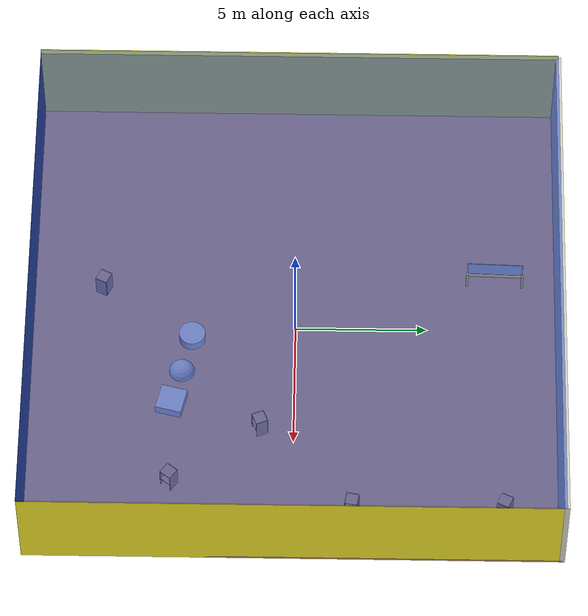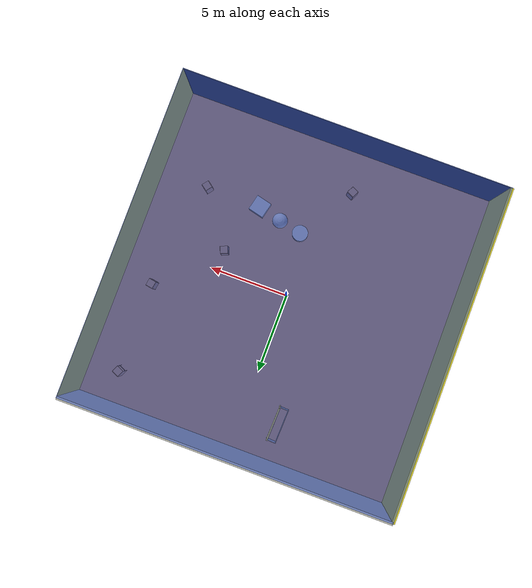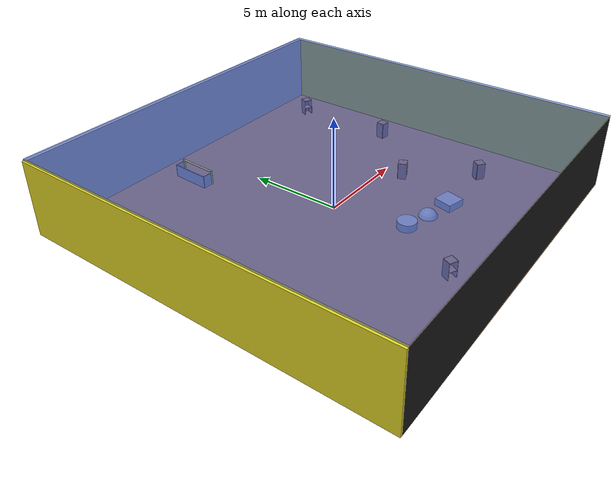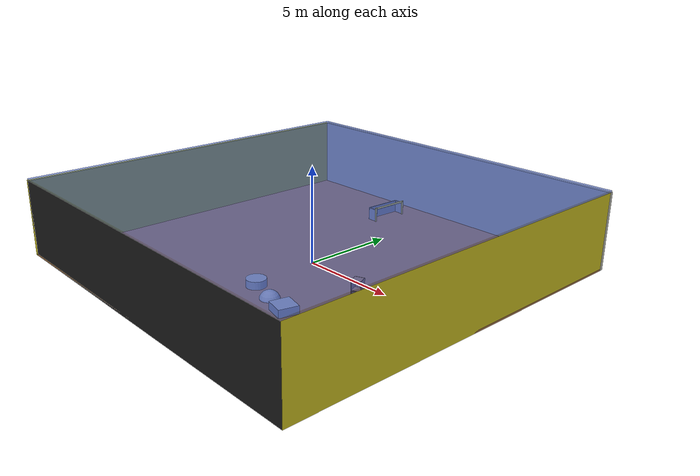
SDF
<sdf version="1.4">
 <world name="default">
  <physics type="ode">
   <max_step_size>0.001</max_step_size>
   <real_time_factor>1</real_time_factor>
   <real_time_update_rate>1000</real_time_update_rate>
   <gravity>0 0 -9.8</gravity>
  </physics>
  <scene><ambient>0.4 0.4 0.4 1</ambient><background>0.7 0.7 0.7 1</background><shadows>1</shadows></scene>
  <model name="Surrounding">
   <static>1</static>
   <link name="Ceiling">
    <collision name="Ceiling_Collision"><geometry><box><size>20 20 0.1</size></box></geometry></collision>
    <visual name="Ceiling_Visual">
     <geometry><box><size>20 20 0.1</size></box></geometry>
     <material>
      <script><uri>file://media/materials/scripts/gazebo.material</uri><name>Gazebo/BlueTransparent</name></script>
     </material>
    </visual>
    <pose>0 0 4.05 0 0 0</pose>
   </link>
   <link name="Wall_South">
    <collision name="Wall_South_Collision">
     <geometry><box><size>20 0 4</size></box></geometry>
     <pose>0 0 2 0 -0 0</pose>
    </collision>
    <visual name="Wall_South_Visual">
     <pose>0 0 2 0 -0 0</pose>
     <geometry><box><size>20 0 4</size></box></geometry>
     <material>
      <script><uri>file://media/materials/scripts/gazebo.material</uri><name>Gazebo/FlatBlack</name></script>
     </material>
    </visual>
    <velocity_decay><linear>0</linear><angular>0</angular></velocity_decay>
    <pose>0 -10 0 0 -0 0</pose>
   </link>
   <link name="Wall_East">
    <collision name="Wall_21_Collision">
     <geometry><box><size>20 0 4</size></box></geometry>
     <pose>0 0 2 0 -0 0</pose>
    </collision>
    <visual name="Wall_21_Visual">
     <pose>0 0 2 0 -0 0</pose>
     <geometry><box><size>20 0 4</size></box></geometry>
     <material>
      <script><uri>file://media/materials/scripts/gazebo.material</uri><name>Gazebo/YellowGlow</name></script>
     </material>
    </visual>
    <velocity_decay><linear>0</linear><angular>0</angular></velocity_decay>
    <pose>10 0 0 0 -0 1.5708</pose>
   </link>
   <link name="Wall_North">
    <collision name="Wall_22_Collision">
     <geometry><box><size>20 0.2 4</size></box></geometry>
     <pose>0 0 2 0 -0 0</pose>
    </collision>
    <visual name="Wall_22_Visual">
     <pose>0 0 2 0 -0 0</pose>
     <geometry><box><size>20 0.2 4</size></box></geometry>
     <material>
      <script><uri>file://media/materials/scripts/gazebo.material</uri><name>Gazebo/PaintedWall</name></script>
     </material>
    </visual>
    <velocity_decay><linear>0</linear><angular>0</angular></velocity_decay>
    <pose>0 10 0 0 -0 0</pose>
   </link>
   <link name="Wall_West">
    <collision name="Wall_23_Collision">
     <geometry><box><size>20 0.2 4</size></box></geometry>
     <pose>0 0 2 0 -0 0</pose>
    </collision>
    <visual name="Wall_23_Visual">
     <pose>0 0 2 0 -0 0</pose>
     <geometry><box><size>20 0.2 4</size></box></geometry>
     <material>
      <script><uri>file://media/materials/scripts/gazebo.material</uri><name>Gazebo/Yellow</name></script>
     </material>
    </visual>
    <velocity_decay><linear>0</linear><angular>0</angular></velocity_decay>
    <pose>-10 0 0 0 0 -1.5708</pose>
   </link>
   <link name="Ground_link">
    <collision name="collision">
     <pose>0 0 .05 0 -0 0</pose>
     <geometry><box><size>20 20 0.1</size></box></geometry>
    </collision>
    <visual name="visual">
     <pose>0 0 .05 0 -0 0</pose>
     <geometry><box><size>20 20 0.1</size></box></geometry>
     <material>
      <script><uri>file://media/materials/scripts/gazebo.material</uri><name>Gazebo/WoodPallet</name></script>
     </material>
    </visual>
   </link>
   <static>1</static>
  </model>
  <spherical_coordinates>
   <surface_model>EARTH_WGS84</surface_model>
   <latitude_deg>0</latitude_deg>
   <longitude_deg>0</longitude_deg>
   <elevation>0</elevation>
   <heading_deg>0</heading_deg>
  </spherical_coordinates>
  <light name="lightball_0" type="diffuse">
   <diffuse>0.8 0.8 0.8 1</diffuse>
   <specular>0.2 0.2 0.2 1</specular>
   <attenuation>
    <range>100</range>
    <constant>0.7</constant>
    <linear>0.01</linear>
    <quadratic>0.001</quadratic>
   </attenuation>
   <direction>-0.5 0.1 -0.9</direction>
   <pose>-6.00795114169 -2.5739344854 1.50729004219 0 0 0</pose>
  </light>
  <light name="lightball_1" type="diffuse">
   <diffuse>0.8 0.8 0.8 1</diffuse>
   <specular>0.2 0.2 0.2 1</specular>
   <attenuation>
    <range>100</range>
    <constant>0.7</constant>
    <linear>0.01</linear>
    <quadratic>0.001</quadratic>
   </attenuation>
   <direction>-0.5 0.1 -0.9</direction>
   <pose>7.3273639093 -3.97817427303 3.49563346706 0 0 0</pose>
  </light>
  <light name="lightball_2" type="diffuse">
   <diffuse>0.8 0.8 0.8 1</diffuse>
   <specular>0.2 0.2 0.2 1</specular>
   <attenuation>
    <range>100</range>
    <constant>0.7</constant>
    <linear>0.01</linear>
    <quadratic>0.001</quadratic>
   </attenuation>
   <direction>-0.5 0.1 -0.9</direction>
   <pose>6.37733559773 -7.17890805096 0.614710147649 0 0 0</pose>
  </light>
  <light name="lightball_3" type="diffuse">
   <diffuse>0.8 0.8 0.8 1</diffuse>
   <specular>0.2 0.2 0.2 1</specular>
   <attenuation>
    <range>100</range>
    <constant>0.7</constant>
    <linear>0.01</linear>
    <quadratic>0.001</quadratic>
   </attenuation>
   <direction>-0.5 0.1 -0.9</direction>
   <pose>-1.42666057456 -1.70431949686 2.31992813246 0 0 0</pose>
  </light>
  <light name="lightball_4" type="diffuse">
   <diffuse>0.8 0.8 0.8 1</diffuse>
   <specular>0.2 0.2 0.2 1</specular>
   <attenuation>
    <range>100</range>
    <constant>0.7</constant>
    <linear>0.01</linear>
    <quadratic>0.001</quadratic>
   </attenuation>
   <direction>-0.5 0.1 -0.9</direction>
   <pose>-9.58363787918 7.54025004087 2.22966996998 0 0 0</pose>
  </light>
  <light name="lightball_5" type="diffuse">
   <diffuse>0.8 0.8 0.8 1</diffuse>
   <specular>0.2 0.2 0.2 1</specular>
   <attenuation>
    <range>100</range>
    <constant>0.7</constant>
    <linear>0.01</linear>
    <quadratic>0.001</quadratic>
   </attenuation>
   <direction>-0.5 0.1 -0.9</direction>
   <pose>7.32614305962 -2.68054671824 3.56417278695 0 0 0</pose>
  </light>
  <light name="lightball_6" type="diffuse">
   <diffuse>0.8 0.8 0.8 1</diffuse>
   <specular>0.2 0.2 0.2 1</specular>
   <attenuation>
    <range>100</range>
    <constant>0.7</constant>
    <linear>0.01</linear>
    <quadratic>0.001</quadratic>
   </attenuation>
   <direction>-0.5 0.1 -0.9</direction>
   <pose>-2.6580903281 -4.49105986801 1.17598804353 0 0 0</pose>
  </light>
  <light name="lightball_7" type="diffuse">
   <diffuse>0.8 0.8 0.8 1</diffuse>
   <specular>0.2 0.2 0.2 1</specular>
   <attenuation>
    <range>100</range>
    <constant>0.7</constant>
    <linear>0.01</linear>
    <quadratic>0.001</quadratic>
   </attenuation>
   <direction>-0.5 0.1 -0.9</direction>
   <pose>-0.186704087658 7.53433445269 1.71210728677 0 0 0</pose>
  </light>
  <include><uri>model://cabinet</uri><pose>-1.63863186232 -7.36168501954 0 0 0 1.12653122626</pose></include>
  <include>
   <uri>model://robocup_3Dsim_goal</uri>
   <pose>-1.96932615968 7.59885656646 0 0 0 3.10760879351</pose>
  </include>
  <include>
   <uri>model://textured_shapes</uri>
   <pose>2.00817272324 -4.27949970371 0 0 0 1.33165103999</pose>
  </include>
  <include><uri>model://cabinet</uri><pose>4.55025210529 -1.27694962985 0 0 0 1.96519316234</pose></include>
  <include><uri>model://cabinet</uri><pose>6.91623300663 -4.6170281703 0 0 0 2.48950891742</pose></include>
  <include><uri>model://cabinet</uri><pose>8.00865371189 2.20943584982 0 0 0 2.97554308992</pose></include>
  <include><uri>model://cabinet</uri><pose>7.97551323324 7.89000859712 0 0 0 1.14596328997</pose></include>
 </world>
</sdf>

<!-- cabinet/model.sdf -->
<sdf version="1.5">
  <model name="cabinet">
    <static>true</static>
    <link name="cabinet_bottom_plate">
      <inertial>
        <pose>0 0 -1 0 0 0</pose>
        <inertia>
          <ixx>2.050000</ixx>
          <ixy>0</ixy>
          <ixz>0</ixz>
          <iyy>2.050000</iyy>
          <iyz>0</iyz>
          <izz>2.050000</izz>
        </inertia>
        <mass>25.000000</mass>
      </inertial>
      <collision name="cabinet_bottom_plate_geom">
        <pose>0 0 0.010000 0 0 0</pose>
        <geometry>
          <box>
            <size>0.450000 0.450000 0.020000</size>
          </box>
        </geometry>
      </collision>
      <visual name="cabinet_bottom_plate_geom_visual">
        <pose>0 0 0.010000 0 0 0</pose>
        <geometry>
          <box>
            <size>0.450000 0.450000 0.020000</size>
          </box>
        </geometry>
        <material>
          <script>
            <uri>model://media/materials/scripts/gazebo.material</uri>
            <name>Gazebo/Wood</name>
          </script>
        </material>
      </visual>
      <collision name="cabinet_bottom_plate_geom_cabinet_back_plate">
        <pose>0.235000 0 0.510000 0 0 0</pose>
        <geometry>
          <box>
            <size>0.020000 0.450000 1.020000</size>
          </box>
        </geometry>
      </collision>
      <visual name="cabinet_bottom_plate_geom_cabinet_back_plate_visual">
        <pose>0.235000 0 0.510000 0 0 0</pose>
        <geometry>
          <box>
            <size>0.020000 0.450000 1.020000</size>
          </box>
        </geometry>
        <material>
          <script>
            <uri>model://media/materials/scripts/gazebo.material</uri>
            <name>Gazebo/Wood</name>
          </script>
        </material>
      </visual>
      <collision name="cabinet_bottom_plate_geom_cabinet_left_plate">
        <pose>0 0.235000 0.510000 0 0 0</pose>
        <geometry>
          <box>
            <size>0.450000 0.020000 1.020000</size>
          </box>
        </geometry>
      </collision>
      <visual name="cabinet_bottom_plate_geom_cabinet_left_plate_visual">
        <pose>0 0.235000 0.510000 0 0 0</pose>
        <geometry>
          <box>
            <size>0.450000 0.020000 1.020000</size>
          </box>
        </geometry>
        <material>
          <script>
            <uri>model://media/materials/scripts/gazebo.material</uri>
            <name>Gazebo/Wood</name>
          </script>
        </material>
      </visual>
      <collision name="cabinet_bottom_plate_geom_cabinet_middle_plate">
        <pose>0 0 0.510000 0 0 0</pose>
        <geometry>
          <box>
            <size>0.450000 0.450000 0.020000</size>
          </box>
        </geometry>
      </collision>
      <visual name="cabinet_bottom_plate_geom_cabinet_middle_plate_visual">
        <pose>0 0 0.510000 0 0 0</pose>
        <geometry>
          <box>
            <size>0.450000 0.450000 0.020000</size>
          </box>
        </geometry>
        <material>
          <script>
            <uri>model://media/materials/scripts/gazebo.material</uri>
            <name>Gazebo/Wood</name>
          </script>
        </material>
      </visual>
      <collision name="cabinet_bottom_plate_geom_cabinet_right_plate">
        <pose>0 -0.235000 0.510000 0 0 0</pose>
        <geometry>
          <box>
            <size>0.450000 0.020000 1.020000</size>
          </box>
        </geometry>
      </collision>
      <visual name="cabinet_bottom_plate_geom_cabinet_right_plate_visual">
        <pose>0 -0.235000 0.510000 0 0 0</pose>
        <geometry>
          <box>
            <size>0.450000 0.020000 1.020000</size>
          </box>
        </geometry>
        <material>
          <script>
            <uri>model://media/materials/scripts/gazebo.material</uri>
            <name>Gazebo/Wood</name>
          </script>
        </material>
      </visual>
      <collision name="cabinet_bottom_plate_geom_cabinet_top_plate">
        <pose>0 0 1.010000 0 0 0</pose>
        <geometry>
          <box>
            <size>0.450000 0.450000 0.020000</size>
          </box>
        </geometry>
      </collision>
      <visual name="cabinet_bottom_plate_geom_cabinet_top_plate_visual">
        <pose>0 0 1.010000 0 0 0</pose>
        <geometry>
          <box>
            <size>0.450000 0.450000 0.020000</size>
          </box>
        </geometry>
        <material>
          <script>
            <uri>model://media/materials/scripts/gazebo.material</uri>
            <name>Gazebo/Wood</name>
          </script>
        </material>
      </visual>
    </link>
  </model>
</sdf>

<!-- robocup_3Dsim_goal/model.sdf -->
<sdf version="1.5">
  <model name="robocup_3d_goal">
    <static>true</static>
    <link name="left_post">
      <pose>0 1.05 0.45 0 0 0</pose>
      <collision name="collision">
        <geometry>
          <cylinder>
            <radius>0.05</radius>
            <length>0.9</length>
          </cylinder>
        </geometry>
      </collision>
      <visual name="visual">
        <geometry>
          <cylinder>
            <radius>0.05</radius>
            <length>0.9</length>
          </cylinder>
        </geometry>
        <material>
          <script>
            <uri>file://media/materials/scripts/gazebo.material</uri>
            <name>Gazebo/ZincYellow</name>
          </script>
        </material>
      </visual>
    </link>
    <link name="left_support_horiz_lower">
      <pose>0.30 1.05 0.01 0 0 0</pose>
      <collision name="collision">
        <geometry>
          <box>
            <size>0.50 0.02 0.02</size>
          </box>
        </geometry>
      </collision>
      <visual name="visual">
        <geometry>
          <box>
            <size>0.50 0.02 0.02</size>
          </box>
        </geometry>
        <material>
          <script>
            <uri>file://media/materials/scripts/gazebo.material</uri>
            <name>Gazebo/White</name>
          </script>
        </material>
      </visual>
    </link>
    <link name="left_support_horiz_upper">
      <pose>0.30 1.05 0.79 0 0 0</pose>
      <collision name="collision">
        <geometry>
          <box>
            <size>0.50 0.02 0.02</size>
          </box>
        </geometry>
      </collision>
      <visual name="visual">
        <geometry>
          <box>
            <size>0.50 0.02 0.02</size>
          </box>
        </geometry>
        <material>
          <script>
            <uri>file://media/materials/scripts/gazebo.material</uri>
            <name>Gazebo/White</name>
          </script>
        </material>
      </visual>
    </link>
    <link name="left_support_vertical">
      <pose>0.56 1.05 0.4 0 1.5708 0</pose>
      <collision name="collision">
        <geometry>
          <box>
            <size>0.80 0.02 0.02</size>
          </box>
        </geometry>
      </collision>
      <visual name="visual">
        <geometry>
          <box>
            <size>0.80 0.02 0.02</size>
          </box>
        </geometry>
        <material>
          <script>
            <uri>file://media/materials/scripts/gazebo.material</uri>
            <name>Gazebo/White</name>
          </script>
        </material>
      </visual>
    </link>
    <link name="right_support_horiz_lower">
      <pose>0.30 -1.05 0.01 0 0 0</pose>
      <collision name="collision">
        <geometry>
          <box>
            <size>0.50 0.02 0.02</size>
          </box>
        </geometry>
      </collision>
      <visual name="visual">
        <geometry>
          <box>
            <size>0.50 0.02 0.02</size>
          </box>
        </geometry>
        <material>
          <script>
            <uri>file://media/materials/scripts/gazebo.material</uri>
            <name>Gazebo/White</name>
          </script>
        </material>
      </visual>
    </link>
    <link name="right_support_horiz_upper">
      <pose>0.30 -1.05 0.79 0 0 0</pose>
      <collision name="collision">
        <geometry>
          <box>
            <size>0.50 0.02 0.02</size>
          </box>
        </geometry>
      </collision>
      <visual name="visual">
        <geometry>
          <box>
            <size>0.50 0.02 0.02</size>
          </box>
        </geometry>
        <material>
          <script>
            <uri>file://media/materials/scripts/gazebo.material</uri>
            <name>Gazebo/White</name>
          </script>
        </material>
      </visual>
    </link>
    <link name="right_support_vertical">
      <pose>0.56 -1.05 0.4 0 1.5708 0</pose>
      <collision name="collision">
        <geometry>
          <box>
            <size>0.80 0.02 0.02</size>
          </box>
        </geometry>
      </collision>
      <visual name="visual">
        <geometry>
          <box>
            <size>0.80 0.02 0.02</size>
          </box>
        </geometry>
        <material>
          <script>
            <uri>file://media/materials/scripts/gazebo.material</uri>
            <name>Gazebo/White</name>
          </script>
        </material>
      </visual>
    </link>
    <link name="center_support_horiz_lower">
      <pose>0.56 0 0.01 0 1.5708 0</pose>
      <collision name="collision">
        <geometry>
          <box>
            <size>0.02 2.08 0.02</size>
          </box>
        </geometry>
      </collision>
      <visual name="visual">
        <geometry>
          <box>
            <size>0.02 2.08 0.02</size>
          </box>
        </geometry>
        <material>
          <script>
            <uri>file://media/materials/scripts/gazebo.material</uri>
            <name>Gazebo/White</name>
          </script>
        </material>
      </visual>
    </link>
    <link name="center_support_horiz_upper">
      <pose>0.56 0 0.79 0 1.5708 0</pose>
      <collision name="collision">
        <geometry>
          <box>
            <size>0.02 2.08 0.02</size>
          </box>
        </geometry>
      </collision>
      <visual name="visual">
        <geometry>
          <box>
            <size>0.02 2.08 0.02</size>
          </box>
        </geometry>
        <material>
          <script>
            <uri>file://media/materials/scripts/gazebo.material</uri>
            <name>Gazebo/White</name>
          </script>
        </material>
      </visual>
    </link>
    <link name="right_post">
      <pose>0 -1.05 0.45 0 0 0</pose>
      <collision name="collision">
        <geometry>
          <cylinder>
            <radius>0.05</radius>
            <length>0.9</length>
          </cylinder>
        </geometry>
      </collision>
      <visual name="visual">
        <geometry>
          <cylinder>
            <radius>0.05</radius>
            <length>0.9</length>
          </cylinder>
        </geometry>
        <material>
          <script>
            <uri>file://media/materials/scripts/gazebo.material</uri>
            <name>Gazebo/ZincYellow</name>
          </script>
        </material>
      </visual>
    </link>
    <link name="crossbar">
      <pose>0 0 0.85 1.57 1.57 0</pose>
      <collision name="collision">
        <geometry>
          <cylinder>
            <radius>0.05</radius>
            <length>2.0</length>
          </cylinder>
        </geometry>
      </collision>
      <visual name="visual">
        <geometry>
          <cylinder>
            <radius>0.05</radius>
            <length>2.0</length>
          </cylinder>
        </geometry>
        <material>
          <script>
            <uri>file://media/materials/scripts/gazebo.material</uri>
            <name>Gazebo/ZincYellow</name>
          </script>
        </material>
      </visual>
    </link>
    <link name="center_net">
      <pose>0.56 0 0.40 0 0 0</pose>
      <collision name="collision">
        <geometry>
          <box>
            <size>0.01 2.1 0.80</size>
          </box>
        </geometry>
      </collision>
      <visual name="visual">
        <geometry>
          <box>
            <size>0.01 2.1 0.80</size>
          </box>
        </geometry>
        <material>
          <script>
            <uri>model://../model_source/models/robocup09_spl_field/materials/scripts/</uri>
            <uri>model://../model_source/models/robocup09_spl_field/materials/textures/</uri>
            <name>RoboCup/Net</name>
          </script>
        </material>
      </visual>
    </link>
    <link name="left_net">
      <pose>0.30 1.05 0.40 0 0 0</pose>
      <collision name="collision">
        <geometry>
          <box>
            <size>0.50 0.01 0.76</size>
          </box>
        </geometry>
      </collision>
      <visual name="visual">
        <geometry>
          <box>
            <size>0.50 0.01 0.76</size>
          </box>
        </geometry>
        <material>
          <script>
            <uri>model://../model_source/models/robocup09_spl_field/materials/scripts/</uri>
            <uri>model://../model_source/models/robocup09_spl_field/materials/textures/</uri>
            <name>RoboCup/Net</name>
          </script>
        </material>
      </visual>
    </link>
    <link name="right_net">
      <pose>0.30 -1.05 0.40 0 0 0</pose>
      <collision name="collision">
        <geometry>
          <box>
            <size>0.50 0.01 0.76</size>
          </box>
        </geometry>
      </collision>
      <visual name="visual">
        <geometry>
          <box>
            <size>0.50 0.01 0.76</size>
          </box>
        </geometry>
        <material>
          <script>
            <uri>model://../model_source/models/robocup09_spl_field/materials/scripts/</uri>
            <uri>model://../model_source/models/robocup09_spl_field/materials/textures/</uri>
            <name>RoboCup/Net</name>
          </script>
        </material>
      </visual>
    </link>
  </model>
</sdf>

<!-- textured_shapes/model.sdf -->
<sdf version="1.6">
  <model name="textured_shapes">
    <pose>0 0 0.5 0 0 0</pose>
    <link name="box">
      <pose>0 -1.5 0 0 0 0</pose>
      <collision name="collision">
        <geometry>
          <box>
            <size>1 1 1</size>
          </box>
        </geometry>
      </collision>
      <visual name="visual">
        <geometry>
          <box>
            <size>1 1 1</size>
          </box>
        </geometry>
        <material>
          <script>
            <uri>model://../model_source/models/textured_shapes/materials/scripts</uri>
            <uri>model://../model_source/models/textured_shapes/materials/textures</uri>
            <name>TexturedShape/Squares</name>
          </script>
        </material>
      </visual>
    </link>
    <link name="sphere">
      <collision name="collision">
        <geometry>
          <sphere>
            <radius>0.5</radius>
          </sphere>
        </geometry>
      </collision>
      <visual name="visual">
        <geometry>
          <sphere>
            <radius>0.5</radius>
          </sphere>
        </geometry>
        <material>
          <script>
            <uri>model://../model_source/models/textured_shapes/materials/scripts</uri>
            <uri>model://../model_source/models/textured_shapes/materials/textures</uri>
            <name>TexturedShape/Squares</name>
          </script>
        </material>
      </visual>
    </link>
    <link name="cylinder">
      <pose>0 1.5 0 0 0 0</pose>
      <collision name="collision">
        <geometry>
          <cylinder>
            <radius>0.5</radius>
            <length>1</length>
          </cylinder>
        </geometry>
      </collision>
      <visual name="visual">
        <geometry>
          <cylinder>
            <radius>0.5</radius>
            <length>1</length>
          </cylinder>
        </geometry>
        <material>
          <script>
            <uri>model://../model_source/models/textured_shapes/materials/scripts</uri>
            <uri>model://../model_source/models/textured_shapes/materials/textures</uri>
            <name>TexturedShape/Squares</name>
          </script>
        </material>
      </visual>
    </link>
  </model>
</sdf>
